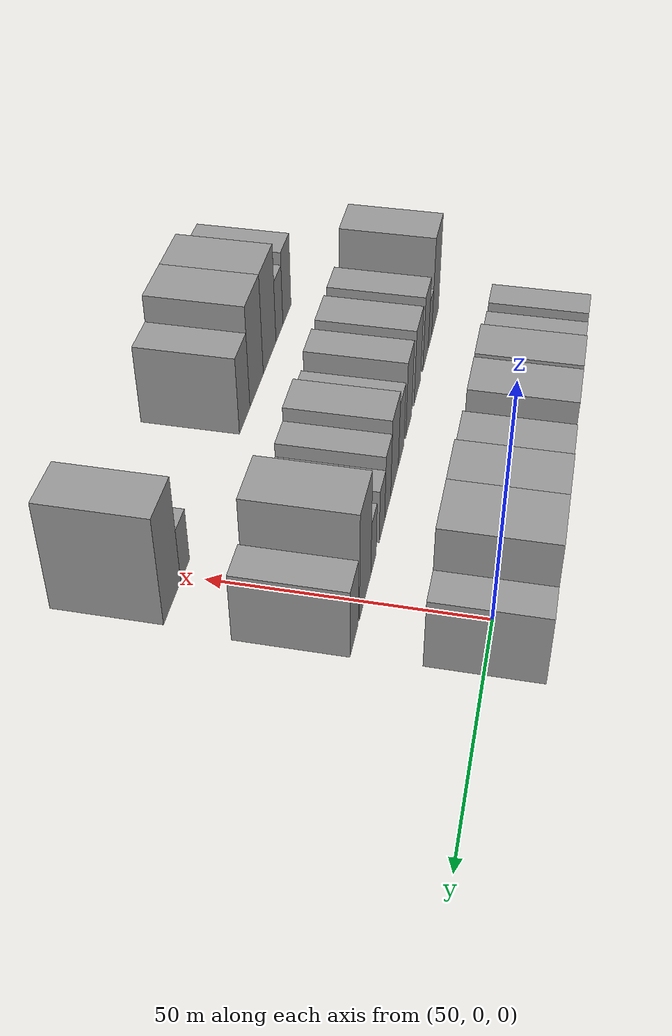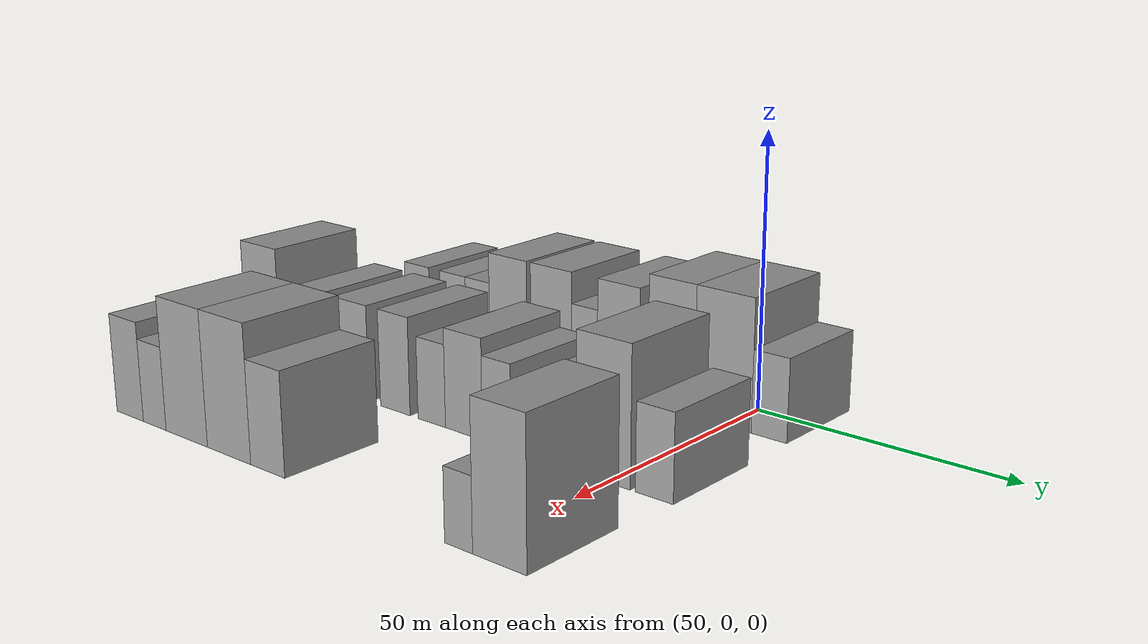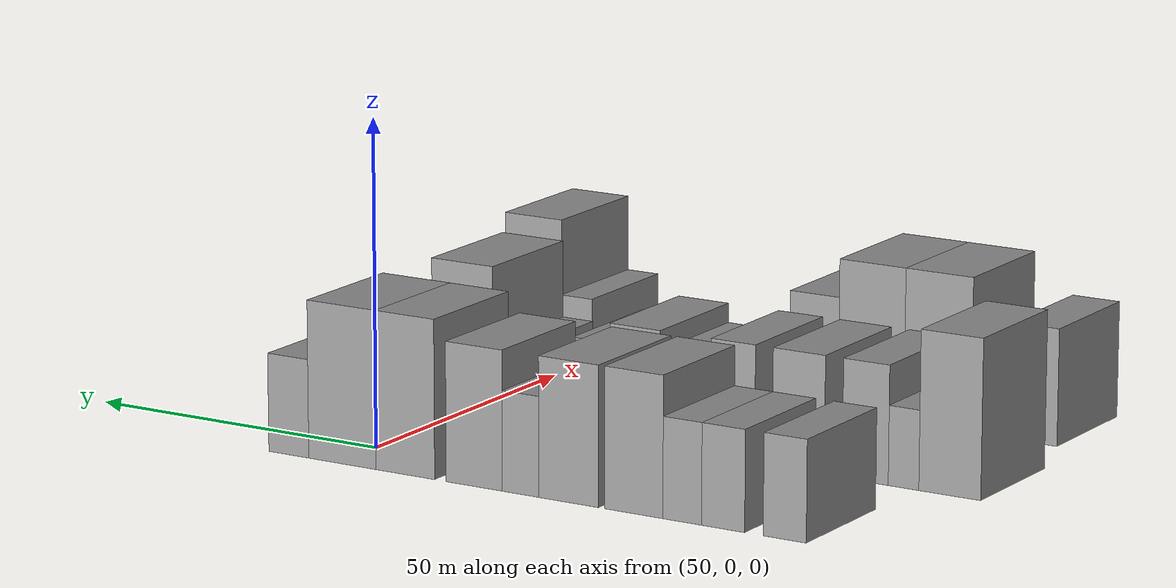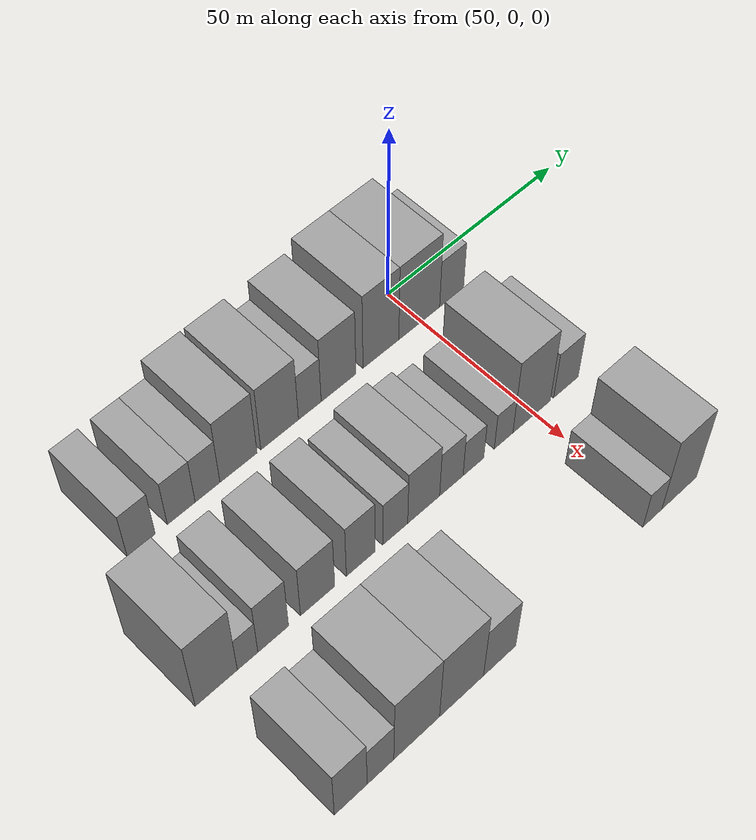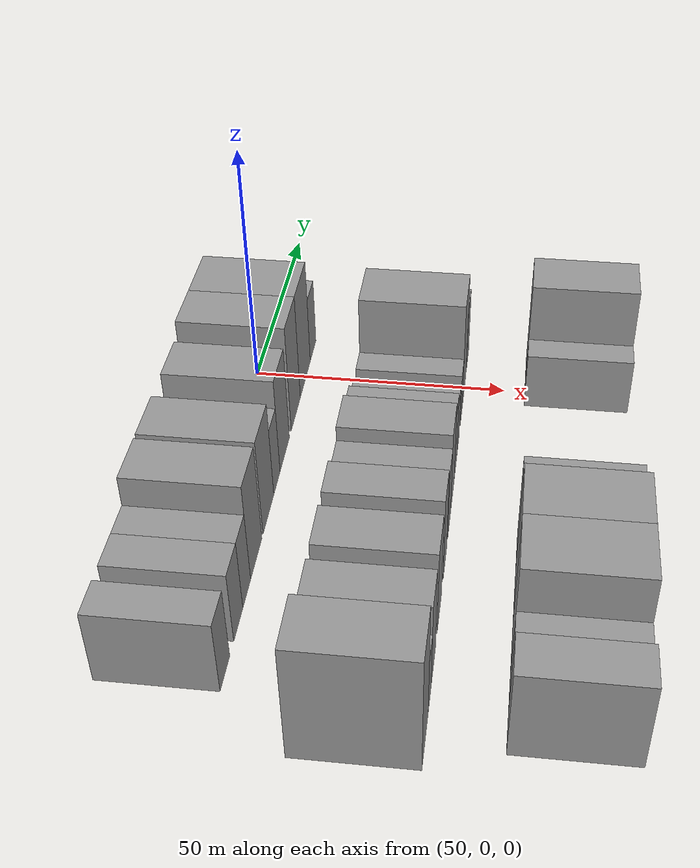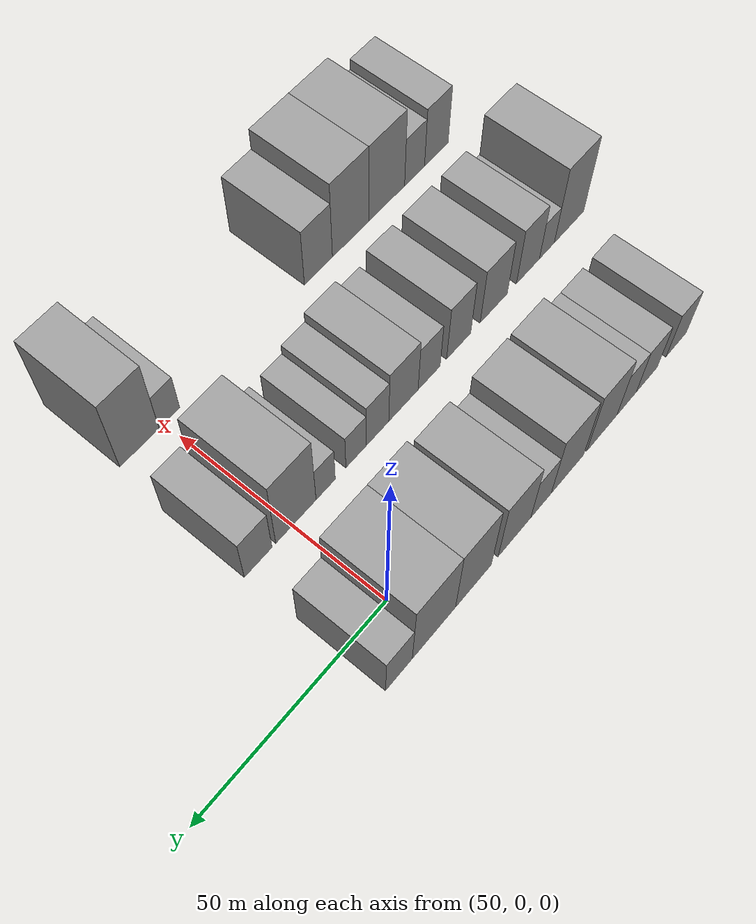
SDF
<sdf version="1.6">
 <world name="default">
  <model name="building_30">
   <static>1</static>
   <pose>50.0000 -75.5084 0 0.000000 0.000000 0.000000</pose>
   <link name="link">
    <pose>0 0 7.50 0 0 0</pose>
    <collision name="collision"><geometry><box><size>20.0000 6.9314 15.0000</size></box></geometry></collision>
    <visual name="visual">
     <cast_shadows>0</cast_shadows>
     <geometry><box><size>20.0000 6.9314 15.0000</size></box></geometry>
     <material>
      <script>
       <uri>model://grey_wall/materials/scripts</uri>
       <uri>model://grey_wall/materials/textures</uri>
       <name>vrc/grey_wall</name>
      </script>
     </material>
    </visual>
   </link>
  </model>
  <model name="building_31">
   <static>1</static>
   <pose>50.0000 -65.5238 0 0.000000 0.000000 0.000000</pose>
   <link name="link">
    <pose>0 0 7.50 0 0 0</pose>
    <collision name="collision"><geometry><box><size>20.0000 7.0378 15.0000</size></box></geometry></collision>
    <visual name="visual">
     <cast_shadows>0</cast_shadows>
     <geometry><box><size>20.0000 7.0378 15.0000</size></box></geometry>
     <material>
      <script>
       <uri>model://grey_wall/materials/scripts</uri>
       <uri>model://grey_wall/materials/textures</uri>
       <name>vrc/grey_wall</name>
      </script>
     </material>
    </visual>
   </link>
  </model>
  <model name="building_32">
   <static>1</static>
   <pose>50.0000 -58.8244 0 0.000000 0.000000 0.000000</pose>
   <link name="link">
    <pose>0 0 7.50 0 0 0</pose>
    <collision name="collision"><geometry><box><size>20.0000 6.3609 15.0000</size></box></geometry></collision>
    <visual name="visual">
     <cast_shadows>0</cast_shadows>
     <geometry><box><size>20.0000 6.3609 15.0000</size></box></geometry>
     <material>
      <script>
       <uri>model://grey_wall/materials/scripts</uri>
       <uri>model://grey_wall/materials/textures</uri>
       <name>vrc/grey_wall</name>
      </script>
     </material>
    </visual>
   </link>
  </model>
  <model name="building_33">
   <static>1</static>
   <pose>50.0000 -50.7950 0 0.000000 0.000000 0.000000</pose>
   <link name="link">
    <pose>0 0 10.50 0 0 0</pose>
    <collision name="collision"><geometry><box><size>20.0000 9.6981 21.0000</size></box></geometry></collision>
    <visual name="visual">
     <cast_shadows>0</cast_shadows>
     <geometry><box><size>20.0000 9.6981 21.0000</size></box></geometry>
     <material>
      <script>
       <uri>model://grey_wall/materials/scripts</uri>
       <uri>model://grey_wall/materials/textures</uri>
       <name>vrc/grey_wall</name>
      </script>
     </material>
    </visual>
   </link>
  </model>
  <model name="building_34">
   <static>1</static>
   <pose>50.0000 -39.8899 0 0.000000 0.000000 0.000000</pose>
   <link name="link">
    <pose>0 0 10.50 0 0 0</pose>
    <collision name="collision"><geometry><box><size>20.0000 10.1120 21.0000</size></box></geometry></collision>
    <visual name="visual">
     <cast_shadows>0</cast_shadows>
     <geometry><box><size>20.0000 10.1120 21.0000</size></box></geometry>
     <material>
      <script>
       <uri>model://grey_wall/materials/scripts</uri>
       <uri>model://grey_wall/materials/textures</uri>
       <name>vrc/grey_wall</name>
      </script>
     </material>
    </visual>
   </link>
  </model>
  <model name="building_35">
   <static>1</static>
   <pose>50.0000 -31.7334 0 0.000000 0.000000 0.000000</pose>
   <link name="link">
    <pose>0 0 7.50 0 0 0</pose>
    <collision name="collision"><geometry><box><size>20.0000 6.2009 15.0000</size></box></geometry></collision>
    <visual name="visual">
     <cast_shadows>0</cast_shadows>
     <geometry><box><size>20.0000 6.2009 15.0000</size></box></geometry>
     <material>
      <script>
       <uri>model://grey_wall/materials/scripts</uri>
       <uri>model://grey_wall/materials/textures</uri>
       <name>vrc/grey_wall</name>
      </script>
     </material>
    </visual>
   </link>
  </model>
  <model name="building_36">
   <static>1</static>
   <pose>50.0000 -23.7923 0 0.000000 0.000000 0.000000</pose>
   <link name="link">
    <pose>0 0 10.50 0 0 0</pose>
    <collision name="collision"><geometry><box><size>20.0000 9.6813 21.0000</size></box></geometry></collision>
    <visual name="visual">
     <cast_shadows>0</cast_shadows>
     <geometry><box><size>20.0000 9.6813 21.0000</size></box></geometry>
     <material>
      <script>
       <uri>model://grey_wall/materials/scripts</uri>
       <uri>model://grey_wall/materials/textures</uri>
       <name>vrc/grey_wall</name>
      </script>
     </material>
    </visual>
   </link>
  </model>
  <model name="building_37">
   <static>1</static>
   <pose>50.0000 -11.8276 0 0.000000 0.000000 0.000000</pose>
   <link name="link">
    <pose>0 0 12.00 0 0 0</pose>
    <collision name="collision"><geometry><box><size>20.0000 10.2482 24.0000</size></box></geometry></collision>
    <visual name="visual">
     <cast_shadows>0</cast_shadows>
     <geometry><box><size>20.0000 10.2482 24.0000</size></box></geometry>
     <material>
      <script>
       <uri>model://grey_wall/materials/scripts</uri>
       <uri>model://grey_wall/materials/textures</uri>
       <name>vrc/grey_wall</name>
      </script>
     </material>
    </visual>
   </link>
  </model>
  <model name="building_38">
   <static>1</static>
   <pose>50.0000 -0.7172 0 0.000000 0.000000 0.000000</pose>
   <link name="link">
    <pose>0 0 12.00 0 0 0</pose>
    <collision name="collision"><geometry><box><size>20.0000 11.9725 24.0000</size></box></geometry></collision>
    <visual name="visual">
     <cast_shadows>0</cast_shadows>
     <geometry><box><size>20.0000 11.9725 24.0000</size></box></geometry>
     <material>
      <script>
       <uri>model://grey_wall/materials/scripts</uri>
       <uri>model://grey_wall/materials/textures</uri>
       <name>vrc/grey_wall</name>
      </script>
     </material>
    </visual>
   </link>
  </model>
  <model name="building_39">
   <static>1</static>
   <pose>50.0000 8.8545 0 0.000000 0.000000 0.000000</pose>
   <link name="link">
    <pose>0 0 7.50 0 0 0</pose>
    <collision name="collision"><geometry><box><size>20.0000 7.1708 15.0000</size></box></geometry></collision>
    <visual name="visual">
     <cast_shadows>0</cast_shadows>
     <geometry><box><size>20.0000 7.1708 15.0000</size></box></geometry>
     <material>
      <script>
       <uri>model://grey_wall/materials/scripts</uri>
       <uri>model://grey_wall/materials/textures</uri>
       <name>vrc/grey_wall</name>
      </script>
     </material>
    </visual>
   </link>
  </model>
  <model name="building_109">
   <static>1</static>
   <pose>82.0000 -84.5386 0 0.000000 0.000000 0.000000</pose>
   <link name="link">
    <pose>0 0 12.00 0 0 0</pose>
    <collision name="collision"><geometry><box><size>20.0000 10.0819 24.0000</size></box></geometry></collision>
    <visual name="visual">
     <cast_shadows>0</cast_shadows>
     <geometry><box><size>20.0000 10.0819 24.0000</size></box></geometry>
     <material>
      <script>
       <uri>model://grey_wall/materials/scripts</uri>
       <uri>model://grey_wall/materials/textures</uri>
       <name>vrc/grey_wall</name>
      </script>
     </material>
    </visual>
   </link>
  </model>
  <model name="building_110">
   <static>1</static>
   <pose>82.0000 -76.9883 0 0.000000 0.000000 0.000000</pose>
   <link name="link">
    <pose>0 0 6.00 0 0 0</pose>
    <collision name="collision"><geometry><box><size>20.0000 5.0187 12.0000</size></box></geometry></collision>
    <visual name="visual">
     <cast_shadows>0</cast_shadows>
     <geometry><box><size>20.0000 5.0187 12.0000</size></box></geometry>
     <material>
      <script>
       <uri>model://grey_wall/materials/scripts</uri>
       <uri>model://grey_wall/materials/textures</uri>
       <name>vrc/grey_wall</name>
      </script>
     </material>
    </visual>
   </link>
  </model>
  <model name="building_111">
   <static>1</static>
   <pose>82.0000 -70.6773 0 0.000000 0.000000 0.000000</pose>
   <link name="link">
    <pose>0 0 9.00 0 0 0</pose>
    <collision name="collision"><geometry><box><size>20.0000 7.6033 18.0000</size></box></geometry></collision>
    <visual name="visual">
     <cast_shadows>0</cast_shadows>
     <geometry><box><size>20.0000 7.6033 18.0000</size></box></geometry>
     <material>
      <script>
       <uri>model://grey_wall/materials/scripts</uri>
       <uri>model://grey_wall/materials/textures</uri>
       <name>vrc/grey_wall</name>
      </script>
     </material>
    </visual>
   </link>
  </model>
  <model name="building_112">
   <static>1</static>
   <pose>82.0000 -59.5124 0 0.000000 0.000000 0.000000</pose>
   <link name="link">
    <pose>0 0 9.00 0 0 0</pose>
    <collision name="collision"><geometry><box><size>20.0000 8.7265 18.0000</size></box></geometry></collision>
    <visual name="visual">
     <cast_shadows>0</cast_shadows>
     <geometry><box><size>20.0000 8.7265 18.0000</size></box></geometry>
     <material>
      <script>
       <uri>model://grey_wall/materials/scripts</uri>
       <uri>model://grey_wall/materials/textures</uri>
       <name>vrc/grey_wall</name>
      </script>
     </material>
    </visual>
   </link>
  </model>
  <model name="building_113">
   <static>1</static>
   <pose>82.0000 -48.3867 0 0.000000 0.000000 0.000000</pose>
   <link name="link">
    <pose>0 0 9.00 0 0 0</pose>
    <collision name="collision"><geometry><box><size>20.0000 7.5249 18.0000</size></box></geometry></collision>
    <visual name="visual">
     <cast_shadows>0</cast_shadows>
     <geometry><box><size>20.0000 7.5249 18.0000</size></box></geometry>
     <material>
      <script>
       <uri>model://grey_wall/materials/scripts</uri>
       <uri>model://grey_wall/materials/textures</uri>
       <name>vrc/grey_wall</name>
      </script>
     </material>
    </visual>
   </link>
  </model>
  <model name="building_114">
   <static>1</static>
   <pose>82.0000 -39.2723 0 0.000000 0.000000 0.000000</pose>
   <link name="link">
    <pose>0 0 7.50 0 0 0</pose>
    <collision name="collision"><geometry><box><size>20.0000 6.7040 15.0000</size></box></geometry></collision>
    <visual name="visual">
     <cast_shadows>0</cast_shadows>
     <geometry><box><size>20.0000 6.7040 15.0000</size></box></geometry>
     <material>
      <script>
       <uri>model://grey_wall/materials/scripts</uri>
       <uri>model://grey_wall/materials/textures</uri>
       <name>vrc/grey_wall</name>
      </script>
     </material>
    </visual>
   </link>
  </model>
  <model name="building_115">
   <static>1</static>
   <pose>82.0000 -31.5607 0 0.000000 0.000000 0.000000</pose>
   <link name="link">
    <pose>0 0 9.00 0 0 0</pose>
    <collision name="collision"><geometry><box><size>20.0000 8.7190 18.0000</size></box></geometry></collision>
    <visual name="visual">
     <cast_shadows>0</cast_shadows>
     <geometry><box><size>20.0000 8.7190 18.0000</size></box></geometry>
     <material>
      <script>
       <uri>model://grey_wall/materials/scripts</uri>
       <uri>model://grey_wall/materials/textures</uri>
       <name>vrc/grey_wall</name>
      </script>
     </material>
    </visual>
   </link>
  </model>
  <model name="building_116">
   <static>1</static>
   <pose>82.0000 -23.9363 0 0.000000 0.000000 0.000000</pose>
   <link name="link">
    <pose>0 0 7.50 0 0 0</pose>
    <collision name="collision"><geometry><box><size>20.0000 6.5299 15.0000</size></box></geometry></collision>
    <visual name="visual">
     <cast_shadows>0</cast_shadows>
     <geometry><box><size>20.0000 6.5299 15.0000</size></box></geometry>
     <material>
      <script>
       <uri>model://grey_wall/materials/scripts</uri>
       <uri>model://grey_wall/materials/textures</uri>
       <name>vrc/grey_wall</name>
      </script>
     </material>
    </visual>
   </link>
  </model>
  <model name="building_117">
   <static>1</static>
   <pose>82.0000 -17.7520 0 0.000000 0.000000 0.000000</pose>
   <link name="link">
    <pose>0 0 6.00 0 0 0</pose>
    <collision name="collision"><geometry><box><size>20.0000 5.8386 12.0000</size></box></geometry></collision>
    <visual name="visual">
     <cast_shadows>0</cast_shadows>
     <geometry><box><size>20.0000 5.8386 12.0000</size></box></geometry>
     <material>
      <script>
       <uri>model://grey_wall/materials/scripts</uri>
       <uri>model://grey_wall/materials/textures</uri>
       <name>vrc/grey_wall</name>
      </script>
     </material>
    </visual>
   </link>
  </model>
  <model name="building_118">
   <static>1</static>
   <pose>82.0000 -9.1561 0 0.000000 0.000000 0.000000</pose>
   <link name="link">
    <pose>0 0 6.00 0 0 0</pose>
    <collision name="collision"><geometry><box><size>20.0000 5.3532 12.0000</size></box></geometry></collision>
    <visual name="visual">
     <cast_shadows>0</cast_shadows>
     <geometry><box><size>20.0000 5.3532 12.0000</size></box></geometry>
     <material>
      <script>
       <uri>model://grey_wall/materials/scripts</uri>
       <uri>model://grey_wall/materials/textures</uri>
       <name>vrc/grey_wall</name>
      </script>
     </material>
    </visual>
   </link>
  </model>
  <model name="building_119">
   <static>1</static>
   <pose>82.0000 -0.9947 0 0.000000 0.000000 0.000000</pose>
   <link name="link">
    <pose>0 0 12.00 0 0 0</pose>
    <collision name="collision"><geometry><box><size>20.0000 10.9696 24.0000</size></box></geometry></collision>
    <visual name="visual">
     <cast_shadows>0</cast_shadows>
     <geometry><box><size>20.0000 10.9696 24.0000</size></box></geometry>
     <material>
      <script>
       <uri>model://grey_wall/materials/scripts</uri>
       <uri>model://grey_wall/materials/textures</uri>
       <name>vrc/grey_wall</name>
      </script>
     </material>
    </visual>
   </link>
  </model>
  <model name="building_120">
   <static>1</static>
   <pose>82.0000 9.1610 0 0.000000 0.000000 0.000000</pose>
   <link name="link">
    <pose>0 0 7.50 0 0 0</pose>
    <collision name="collision"><geometry><box><size>20.0000 7.3420 15.0000</size></box></geometry></collision>
    <visual name="visual">
     <cast_shadows>0</cast_shadows>
     <geometry><box><size>20.0000 7.3420 15.0000</size></box></geometry>
     <material>
      <script>
       <uri>model://grey_wall/materials/scripts</uri>
       <uri>model://grey_wall/materials/textures</uri>
       <name>vrc/grey_wall</name>
      </script>
     </material>
    </visual>
   </link>
  </model>
  <model name="building_188">
   <static>1</static>
   <pose>114.0000 -81.6095 0 0.000000 0.000000 0.000000</pose>
   <link name="link">
    <pose>0 0 9.00 0 0 0</pose>
    <collision name="collision"><geometry><box><size>20.0000 7.8537 18.0000</size></box></geometry></collision>
    <visual name="visual">
     <cast_shadows>0</cast_shadows>
     <geometry><box><size>20.0000 7.8537 18.0000</size></box></geometry>
     <material>
      <script>
       <uri>model://grey_wall/materials/scripts</uri>
       <uri>model://grey_wall/materials/textures</uri>
       <name>vrc/grey_wall</name>
      </script>
     </material>
    </visual>
   </link>
  </model>
  <model name="building_189">
   <static>1</static>
   <pose>114.0000 -74.4076 0 0.000000 0.000000 0.000000</pose>
   <link name="link">
    <pose>0 0 7.50 0 0 0</pose>
    <collision name="collision"><geometry><box><size>20.0000 6.5500 15.0000</size></box></geometry></collision>
    <visual name="visual">
     <cast_shadows>0</cast_shadows>
     <geometry><box><size>20.0000 6.5500 15.0000</size></box></geometry>
     <material>
      <script>
       <uri>model://grey_wall/materials/scripts</uri>
       <uri>model://grey_wall/materials/textures</uri>
       <name>vrc/grey_wall</name>
      </script>
     </material>
    </visual>
   </link>
  </model>
  <model name="building_190">
   <static>1</static>
   <pose>114.0000 -65.4065 0 0.000000 0.000000 0.000000</pose>
   <link name="link">
    <pose>0 0 12.00 0 0 0</pose>
    <collision name="collision"><geometry><box><size>20.0000 11.4522 24.0000</size></box></geometry></collision>
    <visual name="visual">
     <cast_shadows>0</cast_shadows>
     <geometry><box><size>20.0000 11.4522 24.0000</size></box></geometry>
     <material>
      <script>
       <uri>model://grey_wall/materials/scripts</uri>
       <uri>model://grey_wall/materials/textures</uri>
       <name>vrc/grey_wall</name>
      </script>
     </material>
    </visual>
   </link>
  </model>
  <model name="building_191">
   <static>1</static>
   <pose>114.0000 -54.0024 0 0.000000 0.000000 0.000000</pose>
   <link name="link">
    <pose>0 0 12.00 0 0 0</pose>
    <collision name="collision"><geometry><box><size>20.0000 11.3559 24.0000</size></box></geometry></collision>
    <visual name="visual">
     <cast_shadows>0</cast_shadows>
     <geometry><box><size>20.0000 11.3559 24.0000</size></box></geometry>
     <material>
      <script>
       <uri>model://grey_wall/materials/scripts</uri>
       <uri>model://grey_wall/materials/textures</uri>
       <name>vrc/grey_wall</name>
      </script>
     </material>
    </visual>
   </link>
  </model>
  <model name="building_192">
   <static>1</static>
   <pose>114.0000 -44.0721 0 0.000000 0.000000 0.000000</pose>
   <link name="link">
    <pose>0 0 9.00 0 0 0</pose>
    <collision name="collision"><geometry><box><size>20.0000 8.5048 18.0000</size></box></geometry></collision>
    <visual name="visual">
     <cast_shadows>0</cast_shadows>
     <geometry><box><size>20.0000 8.5048 18.0000</size></box></geometry>
     <material>
      <script>
       <uri>model://grey_wall/materials/scripts</uri>
       <uri>model://grey_wall/materials/textures</uri>
       <name>vrc/grey_wall</name>
      </script>
     </material>
    </visual>
   </link>
  </model>
  <model name="building_193">
   <static>1</static>
   <pose>114.0000 -1.4545 0 0.000000 0.000000 0.000000</pose>
   <link name="link">
    <pose>0 0 6.00 0 0 0</pose>
    <collision name="collision"><geometry><box><size>20.0000 5.5768 12.0000</size></box></geometry></collision>
    <visual name="visual">
     <cast_shadows>0</cast_shadows>
     <geometry><box><size>20.0000 5.5768 12.0000</size></box></geometry>
     <material>
      <script>
       <uri>model://grey_wall/materials/scripts</uri>
       <uri>model://grey_wall/materials/textures</uri>
       <name>vrc/grey_wall</name>
      </script>
     </material>
    </visual>
   </link>
  </model>
  <model name="building_194">
   <static>1</static>
   <pose>114.0000 6.5219 0 0.000000 0.000000 0.000000</pose>
   <link name="link">
    <pose>0 0 12.00 0 0 0</pose>
    <collision name="collision"><geometry><box><size>20.0000 10.3761 24.0000</size></box></geometry></collision>
    <visual name="visual">
     <cast_shadows>0</cast_shadows>
     <geometry><box><size>20.0000 10.3761 24.0000</size></box></geometry>
     <material>
      <script>
       <uri>model://grey_wall/materials/scripts</uri>
       <uri>model://grey_wall/materials/textures</uri>
       <name>vrc/grey_wall</name>
      </script>
     </material>
    </visual>
   </link>
  </model>
 </world>
</sdf>
